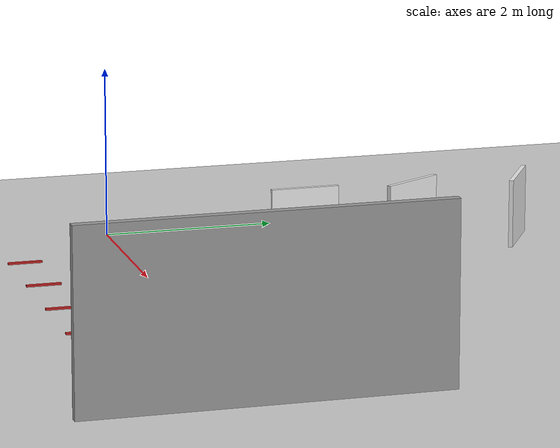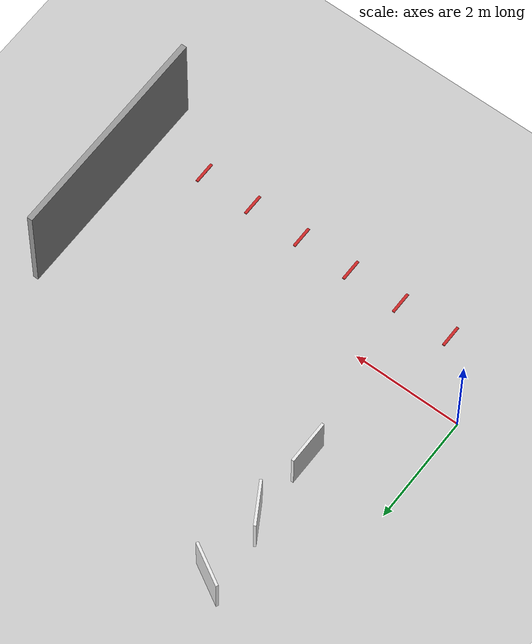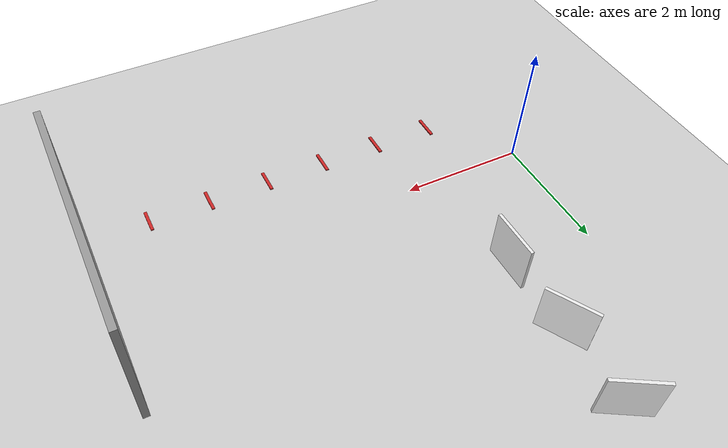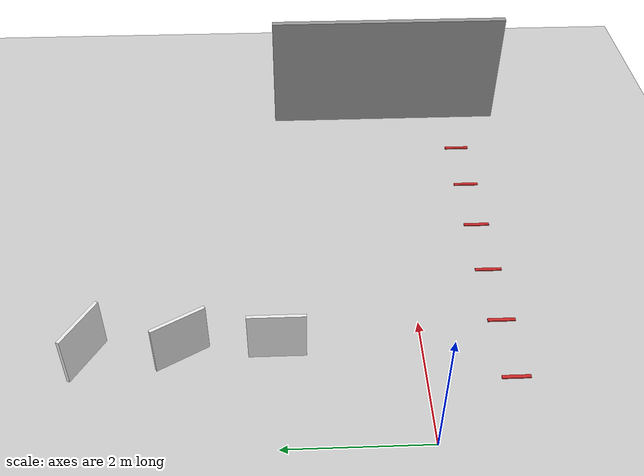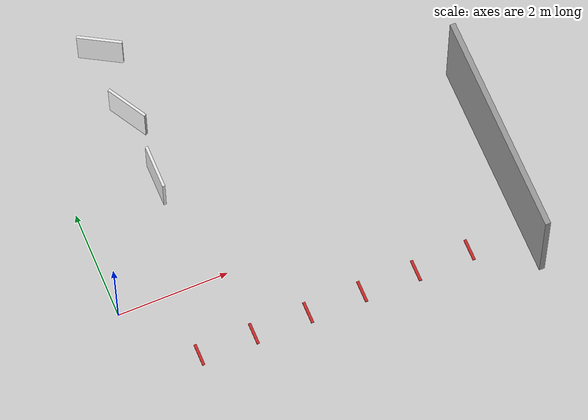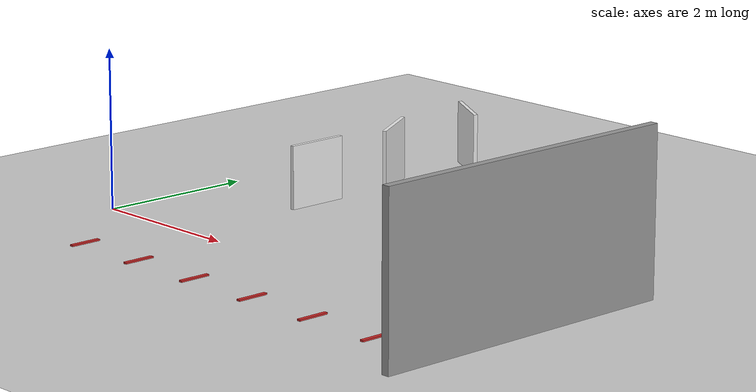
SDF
<?xml version="1.0"?>
<!-- tc70045e_range - generated for the TC70045E lab robot (Gazebo Classic 11). Self-contained: no model downloads needed. -->
<sdf version="1.6">
  <world name="tc70045e_range">
    <light type="directional" name="sun">
      <cast_shadows>false</cast_shadows>
      <pose>0 0 10 0 0 0</pose>
      <diffuse>0.8 0.8 0.8 1</diffuse>
      <specular>0.2 0.2 0.2 1</specular>
      <direction>-0.5 0.1 -0.9</direction>
    </light>
    <model name="ground_plane">
      <static>true</static>
      <link name="link">
        <collision name="collision">
          <geometry><plane><normal>0 0 1</normal><size>100 100</size></plane></geometry>
          <surface><friction><ode><mu>100</mu><mu2>50</mu2></ode></friction></surface>
        </collision>
        <visual name="visual">
          <cast_shadows>false</cast_shadows>
          <geometry><plane><normal>0 0 1</normal><size>100 100</size></plane></geometry>
          <material><script><uri>file://media/materials/scripts/gazebo.material</uri><name>Gazebo/Grey</name></script></material>
        </visual>
      </link>
    </model>
    <physics type="ode">
      <max_step_size>0.001</max_step_size>
      <real_time_factor>1</real_time_factor>
      <real_time_update_rate>1000</real_time_update_rate>
    </physics>
    <scene><shadows>false</shadows><ambient>0.6 0.6 0.6 1</ambient><background>0.7 0.8 0.9 1</background></scene>
    <model name="target_wall"><static>true</static><pose>7.0 0.0 1.0 0 0 0.0</pose>
      <link name="l"><collision name="c"><geometry><box><size>0.1 4.0 2.0</size></box></geometry></collision>
        <visual name="v"><geometry><box><size>0.1 4.0 2.0</size></box></geometry>
          <material><script><uri>file://media/materials/scripts/gazebo.material</uri><name>Gazebo/Grey</name></script></material></visual>
      </link></model>
    <model name="marker_1m"><static>true</static><pose>1.0 -1.2 0.01 0 0 0.0</pose>
      <link name="l">
        <visual name="v"><geometry><box><size>0.05 0.4 0.02</size></box></geometry>
          <material><script><uri>file://media/materials/scripts/gazebo.material</uri><name>Gazebo/Red</name></script></material></visual>
      </link></model>
    <model name="marker_2m"><static>true</static><pose>2.0 -1.2 0.01 0 0 0.0</pose>
      <link name="l">
        <visual name="v"><geometry><box><size>0.05 0.4 0.02</size></box></geometry>
          <material><script><uri>file://media/materials/scripts/gazebo.material</uri><name>Gazebo/Red</name></script></material></visual>
      </link></model>
    <model name="marker_3m"><static>true</static><pose>3.0 -1.2 0.01 0 0 0.0</pose>
      <link name="l">
        <visual name="v"><geometry><box><size>0.05 0.4 0.02</size></box></geometry>
          <material><script><uri>file://media/materials/scripts/gazebo.material</uri><name>Gazebo/Red</name></script></material></visual>
      </link></model>
    <model name="marker_4m"><static>true</static><pose>4.0 -1.2 0.01 0 0 0.0</pose>
      <link name="l">
        <visual name="v"><geometry><box><size>0.05 0.4 0.02</size></box></geometry>
          <material><script><uri>file://media/materials/scripts/gazebo.material</uri><name>Gazebo/Red</name></script></material></visual>
      </link></model>
    <model name="marker_5m"><static>true</static><pose>5.0 -1.2 0.01 0 0 0.0</pose>
      <link name="l">
        <visual name="v"><geometry><box><size>0.05 0.4 0.02</size></box></geometry>
          <material><script><uri>file://media/materials/scripts/gazebo.material</uri><name>Gazebo/Red</name></script></material></visual>
      </link></model>
    <model name="marker_6m"><static>true</static><pose>6.0 -1.2 0.01 0 0 0.0</pose>
      <link name="l">
        <visual name="v"><geometry><box><size>0.05 0.4 0.02</size></box></geometry>
          <material><script><uri>file://media/materials/scripts/gazebo.material</uri><name>Gazebo/Red</name></script></material></visual>
      </link></model>
    <model name="angled_target_0"><static>true</static><pose>1.5 2.0 0.4 0 0 0.0</pose>
      <link name="l"><collision name="c"><geometry><box><size>0.05 0.8 0.8</size></box></geometry></collision>
        <visual name="v"><geometry><box><size>0.05 0.8 0.8</size></box></geometry>
          <material><script><uri>file://media/materials/scripts/gazebo.material</uri><name>Gazebo/White</name></script></material></visual>
      </link></model>
    <model name="angled_target_30"><static>true</static><pose>1.5 3.3 0.4 0 0 0.5235987755982988</pose>
      <link name="l"><collision name="c"><geometry><box><size>0.05 0.8 0.8</size></box></geometry></collision>
        <visual name="v"><geometry><box><size>0.05 0.8 0.8</size></box></geometry>
          <material><script><uri>file://media/materials/scripts/gazebo.material</uri><name>Gazebo/White</name></script></material></visual>
      </link></model>
    <model name="angled_target_60"><static>true</static><pose>1.5 4.6 0.4 0 0 1.0471975511965976</pose>
      <link name="l"><collision name="c"><geometry><box><size>0.05 0.8 0.8</size></box></geometry></collision>
        <visual name="v"><geometry><box><size>0.05 0.8 0.8</size></box></geometry>
          <material><script><uri>file://media/materials/scripts/gazebo.material</uri><name>Gazebo/White</name></script></material></visual>
      </link></model>
  </world>
</sdf>
